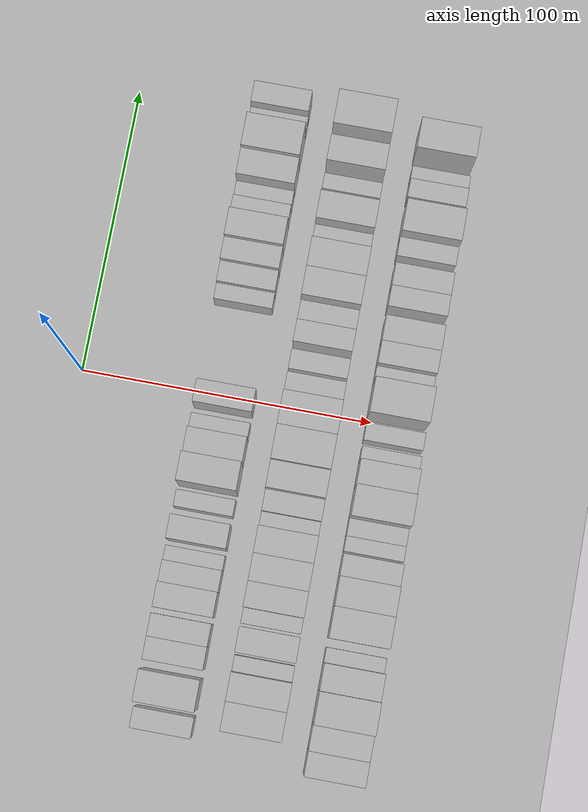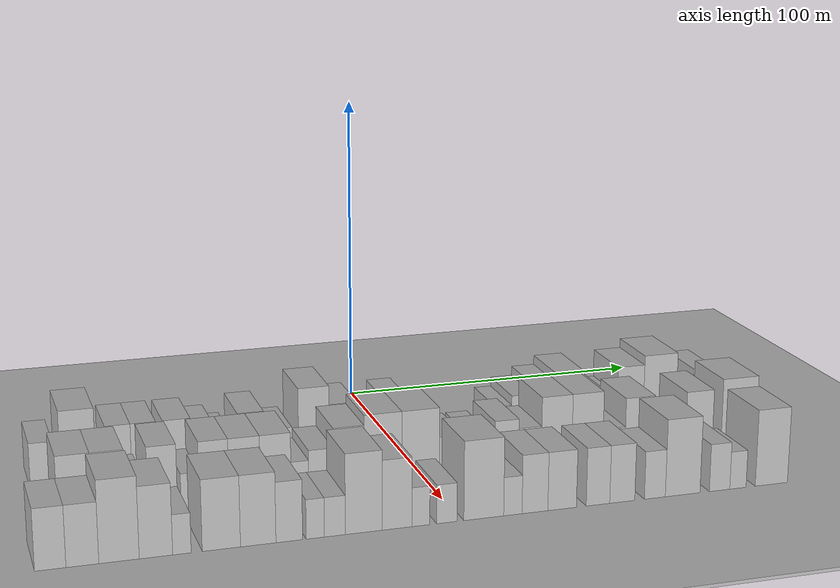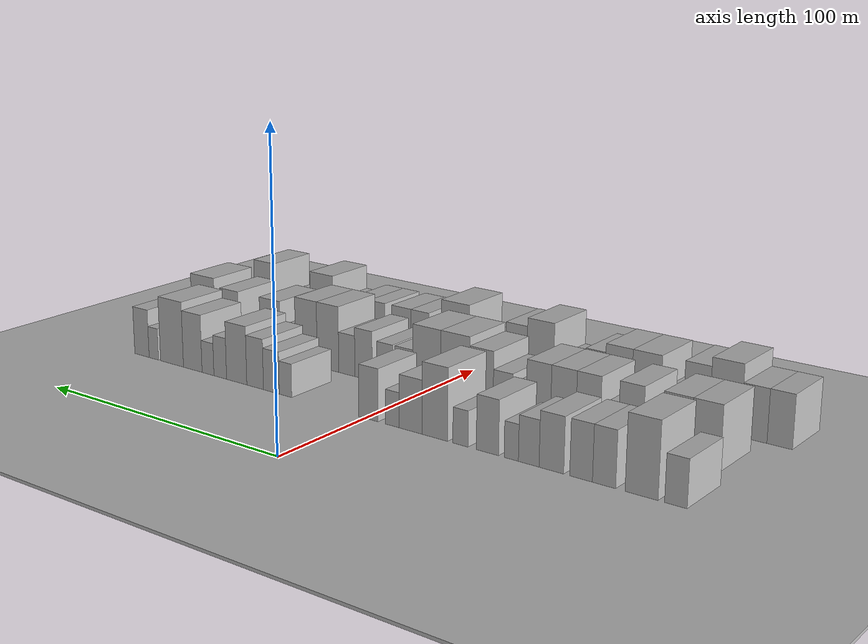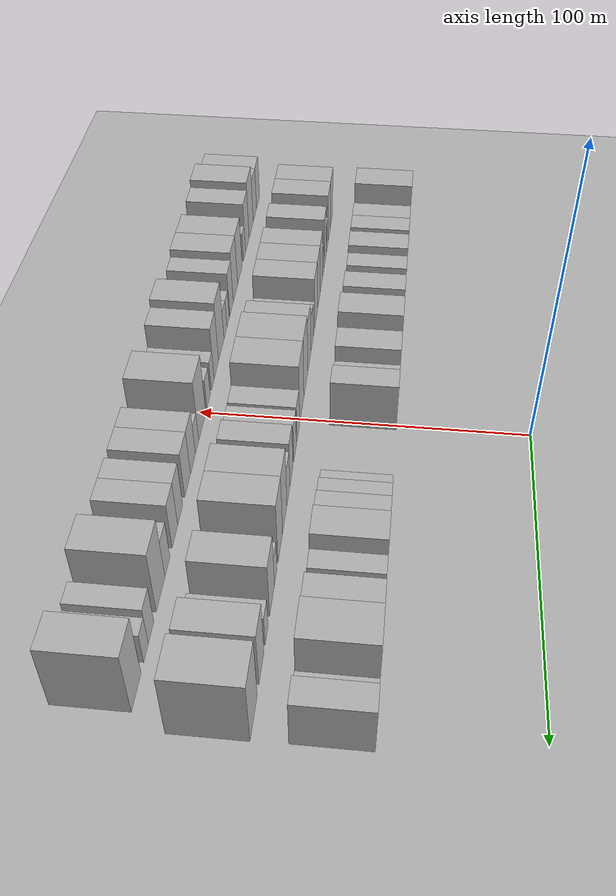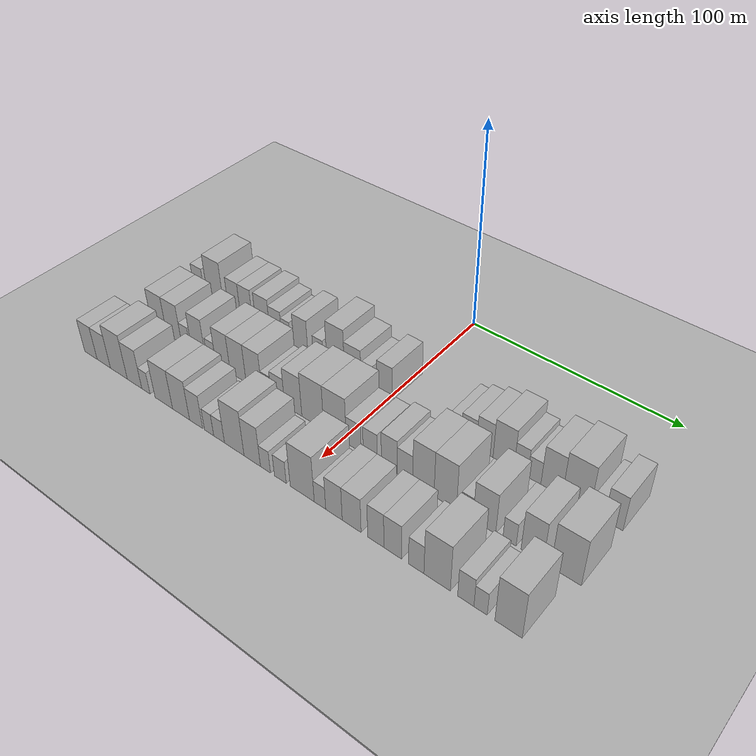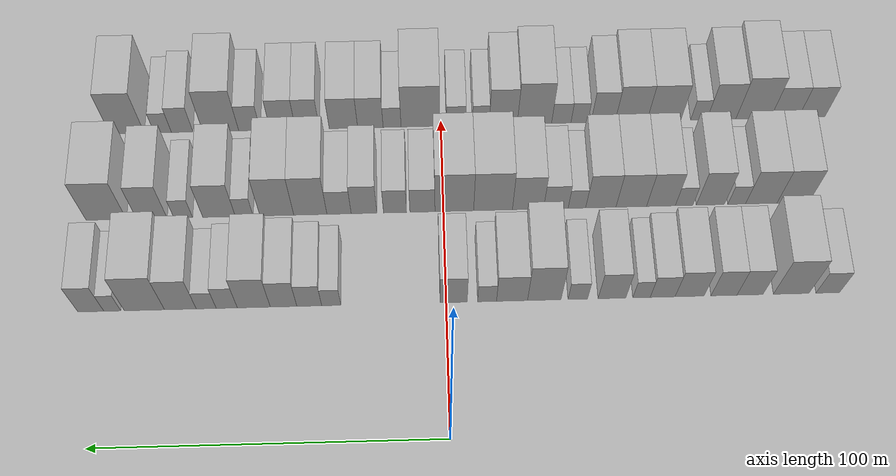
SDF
<sdf version="1.6">
 <world name="default">
  <include><name>ground_plane_1</name><uri>model://HANNAS_ground_plane</uri></include>
  <include>
   <name>ground_plane_2</name>
   <uri>model://HANNAS_ground_plane</uri>
   <pose>100 0 0  0 0 0</pose>
  </include>
  <model name="building_26">
   <static>1</static>
   <pose>50.0000 -109.9660 0 0.000000 0.000000 0.000000</pose>
   <link name="link">
    <pose>0 0 7.50 0 0 0</pose>
    <collision name="collision"><geometry><box><size>20.0000 6.8709 15.0000</size></box></geometry></collision>
    <visual name="visual">
     <cast_shadows>0</cast_shadows>
     <geometry><box><size>20.0000 6.8709 15.0000</size></box></geometry>
     <material>
      <script>
       <uri>model://HANNAS_wall/materials/scripts</uri>
       <uri>model://HANNAS_wall/materials/textures</uri>
       <name>vrc/HANNAS_wall</name>
      </script>
     </material>
    </visual>
   </link>
  </model>
  <model name="building_27">
   <static>1</static>
   <pose>50.0000 -99.3671 0 0.000000 0.000000 0.000000</pose>
   <link name="link">
    <pose>0 0 12.00 0 0 0</pose>
    <collision name="collision"><geometry><box><size>20.0000 10.3270 24.0000</size></box></geometry></collision>
    <visual name="visual">
     <cast_shadows>0</cast_shadows>
     <geometry><box><size>20.0000 10.3270 24.0000</size></box></geometry>
     <material>
      <script>
       <uri>model://HANNAS_wall/materials/scripts</uri>
       <uri>model://HANNAS_wall/materials/textures</uri>
       <name>vrc/HANNAS_wall</name>
      </script>
     </material>
    </visual>
   </link>
  </model>
  <model name="building_28">
   <static>1</static>
   <pose>50.0000 -87.4475 0 0.000000 0.000000 0.000000</pose>
   <link name="link">
    <pose>0 0 9.00 0 0 0</pose>
    <collision name="collision"><geometry><box><size>20.0000 7.5122 18.0000</size></box></geometry></collision>
    <visual name="visual">
     <cast_shadows>0</cast_shadows>
     <geometry><box><size>20.0000 7.5122 18.0000</size></box></geometry>
     <material>
      <script>
       <uri>model://HANNAS_wall/materials/scripts</uri>
       <uri>model://HANNAS_wall/materials/textures</uri>
       <name>vrc/HANNAS_wall</name>
      </script>
     </material>
    </visual>
   </link>
  </model>
  <model name="building_29">
   <static>1</static>
   <pose>50.0000 -79.9290 0 0.000000 0.000000 0.000000</pose>
   <link name="link">
    <pose>0 0 9.00 0 0 0</pose>
    <collision name="collision"><geometry><box><size>20.0000 7.5247 18.0000</size></box></geometry></collision>
    <visual name="visual">
     <cast_shadows>0</cast_shadows>
     <geometry><box><size>20.0000 7.5247 18.0000</size></box></geometry>
     <material>
      <script>
       <uri>model://HANNAS_wall/materials/scripts</uri>
       <uri>model://HANNAS_wall/materials/textures</uri>
       <name>vrc/HANNAS_wall</name>
      </script>
     </material>
    </visual>
   </link>
  </model>
  <model name="building_30">
   <static>1</static>
   <pose>50.0000 -69.9789 0 0.000000 0.000000 0.000000</pose>
   <link name="link">
    <pose>0 0 9.00 0 0 0</pose>
    <collision name="collision"><geometry><box><size>20.0000 8.3756 18.0000</size></box></geometry></collision>
    <visual name="visual">
     <cast_shadows>0</cast_shadows>
     <geometry><box><size>20.0000 8.3756 18.0000</size></box></geometry>
     <material>
      <script>
       <uri>model://HANNAS_wall/materials/scripts</uri>
       <uri>model://HANNAS_wall/materials/textures</uri>
       <name>vrc/HANNAS_wall</name>
      </script>
     </material>
    </visual>
   </link>
  </model>
  <model name="building_31">
   <static>1</static>
   <pose>50.0000 -62.2029 0 0.000000 0.000000 0.000000</pose>
   <link name="link">
    <pose>0 0 7.50 0 0 0</pose>
    <collision name="collision"><geometry><box><size>20.0000 7.1765 15.0000</size></box></geometry></collision>
    <visual name="visual">
     <cast_shadows>0</cast_shadows>
     <geometry><box><size>20.0000 7.1765 15.0000</size></box></geometry>
     <material>
      <script>
       <uri>model://HANNAS_wall/materials/scripts</uri>
       <uri>model://HANNAS_wall/materials/textures</uri>
       <name>vrc/HANNAS_wall</name>
      </script>
     </material>
    </visual>
   </link>
  </model>
  <model name="building_32">
   <static>1</static>
   <pose>50.0000 -56.1010 0 0.000000 0.000000 0.000000</pose>
   <link name="link">
    <pose>0 0 6.00 0 0 0</pose>
    <collision name="collision"><geometry><box><size>20.0000 5.0273 12.0000</size></box></geometry></collision>
    <visual name="visual">
     <cast_shadows>0</cast_shadows>
     <geometry><box><size>20.0000 5.0273 12.0000</size></box></geometry>
     <material>
      <script>
       <uri>model://HANNAS_wall/materials/scripts</uri>
       <uri>model://HANNAS_wall/materials/textures</uri>
       <name>vrc/HANNAS_wall</name>
      </script>
     </material>
    </visual>
   </link>
  </model>
  <model name="building_33">
   <static>1</static>
   <pose>50.0000 -47.5748 0 0.000000 0.000000 0.000000</pose>
   <link name="link">
    <pose>0 0 9.00 0 0 0</pose>
    <collision name="collision"><geometry><box><size>20.0000 8.0251 18.0000</size></box></geometry></collision>
    <visual name="visual">
     <cast_shadows>0</cast_shadows>
     <geometry><box><size>20.0000 8.0251 18.0000</size></box></geometry>
     <material>
      <script>
       <uri>model://HANNAS_wall/materials/scripts</uri>
       <uri>model://HANNAS_wall/materials/textures</uri>
       <name>vrc/HANNAS_wall</name>
      </script>
     </material>
    </visual>
   </link>
  </model>
  <model name="building_34">
   <static>1</static>
   <pose>50.0000 -37.7320 0 0.000000 0.000000 0.000000</pose>
   <link name="link">
    <pose>0 0 6.00 0 0 0</pose>
    <collision name="collision"><geometry><box><size>20.0000 5.6603 12.0000</size></box></geometry></collision>
    <visual name="visual">
     <cast_shadows>0</cast_shadows>
     <geometry><box><size>20.0000 5.6603 12.0000</size></box></geometry>
     <material>
      <script>
       <uri>model://HANNAS_wall/materials/scripts</uri>
       <uri>model://HANNAS_wall/materials/textures</uri>
       <name>vrc/HANNAS_wall</name>
      </script>
     </material>
    </visual>
   </link>
  </model>
  <model name="building_35">
   <static>1</static>
   <pose>50.0000 -28.0791 0 0.000000 0.000000 0.000000</pose>
   <link name="link">
    <pose>0 0 12.00 0 0 0</pose>
    <collision name="collision"><geometry><box><size>20.0000 9.6455 24.0000</size></box></geometry></collision>
    <visual name="visual">
     <cast_shadows>0</cast_shadows>
     <geometry><box><size>20.0000 9.6455 24.0000</size></box></geometry>
     <material>
      <script>
       <uri>model://HANNAS_wall/materials/scripts</uri>
       <uri>model://HANNAS_wall/materials/textures</uri>
       <name>vrc/HANNAS_wall</name>
      </script>
     </material>
    </visual>
   </link>
  </model>
  <model name="building_36">
   <static>1</static>
   <pose>50.0000 -18.7964 0 0.000000 0.000000 0.000000</pose>
   <link name="link">
    <pose>0 0 9.00 0 0 0</pose>
    <collision name="collision"><geometry><box><size>20.0000 8.9199 18.0000</size></box></geometry></collision>
    <visual name="visual">
     <cast_shadows>0</cast_shadows>
     <geometry><box><size>20.0000 8.9199 18.0000</size></box></geometry>
     <material>
      <script>
       <uri>model://HANNAS_wall/materials/scripts</uri>
       <uri>model://HANNAS_wall/materials/textures</uri>
       <name>vrc/HANNAS_wall</name>
      </script>
     </material>
    </visual>
   </link>
  </model>
  <model name="building_37">
   <static>1</static>
   <pose>50.0000 -11.6247 0 0.000000 0.000000 0.000000</pose>
   <link name="link">
    <pose>0 0 6.00 0 0 0</pose>
    <collision name="collision"><geometry><box><size>20.0000 5.4235 12.0000</size></box></geometry></collision>
    <visual name="visual">
     <cast_shadows>0</cast_shadows>
     <geometry><box><size>20.0000 5.4235 12.0000</size></box></geometry>
     <material>
      <script>
       <uri>model://HANNAS_wall/materials/scripts</uri>
       <uri>model://HANNAS_wall/materials/textures</uri>
       <name>vrc/HANNAS_wall</name>
      </script>
     </material>
    </visual>
   </link>
  </model>
  <model name="building_38">
   <static>1</static>
   <pose>50.0000 -2.0124 0 0.000000 0.000000 0.000000</pose>
   <link name="link">
    <pose>0 0 9.00 0 0 0</pose>
    <collision name="collision"><geometry><box><size>20.0000 7.8012 18.0000</size></box></geometry></collision>
    <visual name="visual">
     <cast_shadows>0</cast_shadows>
     <geometry><box><size>20.0000 7.8012 18.0000</size></box></geometry>
     <material>
      <script>
       <uri>model://HANNAS_wall/materials/scripts</uri>
       <uri>model://HANNAS_wall/materials/textures</uri>
       <name>vrc/HANNAS_wall</name>
      </script>
     </material>
    </visual>
   </link>
  </model>
  <model name="building_39">
   <static>1</static>
   <pose>50.0000 33.1125 0 0.000000 0.000000 0.000000</pose>
   <link name="link">
    <pose>0 0 6.00 0 0 0</pose>
    <collision name="collision"><geometry><box><size>20.0000 5.4829 12.0000</size></box></geometry></collision>
    <visual name="visual">
     <cast_shadows>0</cast_shadows>
     <geometry><box><size>20.0000 5.4829 12.0000</size></box></geometry>
     <material>
      <script>
       <uri>model://HANNAS_wall/materials/scripts</uri>
       <uri>model://HANNAS_wall/materials/textures</uri>
       <name>vrc/HANNAS_wall</name>
      </script>
     </material>
    </visual>
   </link>
  </model>
  <model name="building_40">
   <static>1</static>
   <pose>50.0000 39.4169 0 0.000000 0.000000 0.000000</pose>
   <link name="link">
    <pose>0 0 7.50 0 0 0</pose>
    <collision name="collision"><geometry><box><size>20.0000 7.1260 15.0000</size></box></geometry></collision>
    <visual name="visual">
     <cast_shadows>0</cast_shadows>
     <geometry><box><size>20.0000 7.1260 15.0000</size></box></geometry>
     <material>
      <script>
       <uri>model://HANNAS_wall/materials/scripts</uri>
       <uri>model://HANNAS_wall/materials/textures</uri>
       <name>vrc/HANNAS_wall</name>
      </script>
     </material>
    </visual>
   </link>
  </model>
  <model name="building_41">
   <static>1</static>
   <pose>50.0000 46.7882 0 0.000000 0.000000 0.000000</pose>
   <link name="link">
    <pose>0 0 9.00 0 0 0</pose>
    <collision name="collision"><geometry><box><size>20.0000 7.6165 18.0000</size></box></geometry></collision>
    <visual name="visual">
     <cast_shadows>0</cast_shadows>
     <geometry><box><size>20.0000 7.6165 18.0000</size></box></geometry>
     <material>
      <script>
       <uri>model://HANNAS_wall/materials/scripts</uri>
       <uri>model://HANNAS_wall/materials/textures</uri>
       <name>vrc/HANNAS_wall</name>
      </script>
     </material>
    </visual>
   </link>
  </model>
  <model name="building_42">
   <static>1</static>
   <pose>50.0000 55.3181 0 0.000000 0.000000 0.000000</pose>
   <link name="link">
    <pose>0 0 10.50 0 0 0</pose>
    <collision name="collision"><geometry><box><size>20.0000 9.4433 21.0000</size></box></geometry></collision>
    <visual name="visual">
     <cast_shadows>0</cast_shadows>
     <geometry><box><size>20.0000 9.4433 21.0000</size></box></geometry>
     <material>
      <script>
       <uri>model://HANNAS_wall/materials/scripts</uri>
       <uri>model://HANNAS_wall/materials/textures</uri>
       <name>vrc/HANNAS_wall</name>
      </script>
     </material>
    </visual>
   </link>
  </model>
  <model name="building_43">
   <static>1</static>
   <pose>50.0000 63.0514 0 0.000000 0.000000 0.000000</pose>
   <link name="link">
    <pose>0 0 7.50 0 0 0</pose>
    <collision name="collision"><geometry><box><size>20.0000 6.0235 15.0000</size></box></geometry></collision>
    <visual name="visual">
     <cast_shadows>0</cast_shadows>
     <geometry><box><size>20.0000 6.0235 15.0000</size></box></geometry>
     <material>
      <script>
       <uri>model://HANNAS_wall/materials/scripts</uri>
       <uri>model://HANNAS_wall/materials/textures</uri>
       <name>vrc/HANNAS_wall</name>
      </script>
     </material>
    </visual>
   </link>
  </model>
  <model name="building_44">
   <static>1</static>
   <pose>50.0000 68.9114 0 0.000000 0.000000 0.000000</pose>
   <link name="link">
    <pose>0 0 6.00 0 0 0</pose>
    <collision name="collision"><geometry><box><size>20.0000 5.6965 12.0000</size></box></geometry></collision>
    <visual name="visual">
     <cast_shadows>0</cast_shadows>
     <geometry><box><size>20.0000 5.6965 12.0000</size></box></geometry>
     <material>
      <script>
       <uri>model://HANNAS_wall/materials/scripts</uri>
       <uri>model://HANNAS_wall/materials/textures</uri>
       <name>vrc/HANNAS_wall</name>
      </script>
     </material>
    </visual>
   </link>
  </model>
  <model name="building_45">
   <static>1</static>
   <pose>50.0000 76.3164 0 0.000000 0.000000 0.000000</pose>
   <link name="link">
    <pose>0 0 10.50 0 0 0</pose>
    <collision name="collision"><geometry><box><size>20.0000 9.1134 21.0000</size></box></geometry></collision>
    <visual name="visual">
     <cast_shadows>0</cast_shadows>
     <geometry><box><size>20.0000 9.1134 21.0000</size></box></geometry>
     <material>
      <script>
       <uri>model://HANNAS_wall/materials/scripts</uri>
       <uri>model://HANNAS_wall/materials/textures</uri>
       <name>vrc/HANNAS_wall</name>
      </script>
     </material>
    </visual>
   </link>
  </model>
  <model name="building_46">
   <static>1</static>
   <pose>50.0000 86.6233 0 0.000000 0.000000 0.000000</pose>
   <link name="link">
    <pose>0 0 12.00 0 0 0</pose>
    <collision name="collision"><geometry><box><size>20.0000 11.5006 24.0000</size></box></geometry></collision>
    <visual name="visual">
     <cast_shadows>0</cast_shadows>
     <geometry><box><size>20.0000 11.5006 24.0000</size></box></geometry>
     <material>
      <script>
       <uri>model://HANNAS_wall/materials/scripts</uri>
       <uri>model://HANNAS_wall/materials/textures</uri>
       <name>vrc/HANNAS_wall</name>
      </script>
     </material>
    </visual>
   </link>
  </model>
  <model name="building_47">
   <static>1</static>
   <pose>50.0000 95.7858 0 0.000000 0.000000 0.000000</pose>
   <link name="link">
    <pose>0 0 6.00 0 0 0</pose>
    <collision name="collision"><geometry><box><size>20.0000 4.8242 12.0000</size></box></geometry></collision>
    <visual name="visual">
     <cast_shadows>0</cast_shadows>
     <geometry><box><size>20.0000 4.8242 12.0000</size></box></geometry>
     <material>
      <script>
       <uri>model://HANNAS_wall/materials/scripts</uri>
       <uri>model://HANNAS_wall/materials/textures</uri>
       <name>vrc/HANNAS_wall</name>
      </script>
     </material>
    </visual>
   </link>
  </model>
  <model name="building_48">
   <static>1</static>
   <pose>50.0000 101.9094 0 0.000000 0.000000 0.000000</pose>
   <link name="link">
    <pose>0 0 9.00 0 0 0</pose>
    <collision name="collision"><geometry><box><size>20.0000 7.4231 18.0000</size></box></geometry></collision>
    <visual name="visual">
     <cast_shadows>0</cast_shadows>
     <geometry><box><size>20.0000 7.4231 18.0000</size></box></geometry>
     <material>
      <script>
       <uri>model://HANNAS_wall/materials/scripts</uri>
       <uri>model://HANNAS_wall/materials/textures</uri>
       <name>vrc/HANNAS_wall</name>
      </script>
     </material>
    </visual>
   </link>
  </model>
  <model name="building_103">
   <static>1</static>
   <pose>79.0000 -104.0372 0 0.000000 0.000000 0.000000</pose>
   <link name="link">
    <pose>0 0 10.50 0 0 0</pose>
    <collision name="collision"><geometry><box><size>20.0000 9.5311 21.0000</size></box></geometry></collision>
    <visual name="visual">
     <cast_shadows>0</cast_shadows>
     <geometry><box><size>20.0000 9.5311 21.0000</size></box></geometry>
     <material>
      <script>
       <uri>model://HANNAS_wall/materials/scripts</uri>
       <uri>model://HANNAS_wall/materials/textures</uri>
       <name>vrc/HANNAS_wall</name>
      </script>
     </material>
    </visual>
   </link>
  </model>
  <model name="building_104">
   <static>1</static>
   <pose>79.0000 -94.5665 0 0.000000 0.000000 0.000000</pose>
   <link name="link">
    <pose>0 0 10.50 0 0 0</pose>
    <collision name="collision"><geometry><box><size>20.0000 9.4101 21.0000</size></box></geometry></collision>
    <visual name="visual">
     <cast_shadows>0</cast_shadows>
     <geometry><box><size>20.0000 9.4101 21.0000</size></box></geometry>
     <material>
      <script>
       <uri>model://HANNAS_wall/materials/scripts</uri>
       <uri>model://HANNAS_wall/materials/textures</uri>
       <name>vrc/HANNAS_wall</name>
      </script>
     </material>
    </visual>
   </link>
  </model>
  <model name="building_105">
   <static>1</static>
   <pose>79.0000 -87.2103 0 0.000000 0.000000 0.000000</pose>
   <link name="link">
    <pose>0 0 6.00 0 0 0</pose>
    <collision name="collision"><geometry><box><size>20.0000 5.3024 12.0000</size></box></geometry></collision>
    <visual name="visual">
     <cast_shadows>0</cast_shadows>
     <geometry><box><size>20.0000 5.3024 12.0000</size></box></geometry>
     <material>
      <script>
       <uri>model://HANNAS_wall/materials/scripts</uri>
       <uri>model://HANNAS_wall/materials/textures</uri>
       <name>vrc/HANNAS_wall</name>
      </script>
     </material>
    </visual>
   </link>
  </model>
  <model name="building_106">
   <static>1</static>
   <pose>79.0000 -79.3529 0 0.000000 0.000000 0.000000</pose>
   <link name="link">
    <pose>0 0 10.50 0 0 0</pose>
    <collision name="collision"><geometry><box><size>20.0000 8.4125 21.0000</size></box></geometry></collision>
    <visual name="visual">
     <cast_shadows>0</cast_shadows>
     <geometry><box><size>20.0000 8.4125 21.0000</size></box></geometry>
     <material>
      <script>
       <uri>model://HANNAS_wall/materials/scripts</uri>
       <uri>model://HANNAS_wall/materials/textures</uri>
       <name>vrc/HANNAS_wall</name>
      </script>
     </material>
    </visual>
   </link>
  </model>
  <model name="building_107">
   <static>1</static>
   <pose>79.0000 -71.5324 0 0.000000 0.000000 0.000000</pose>
   <link name="link">
    <pose>0 0 6.00 0 0 0</pose>
    <collision name="collision"><geometry><box><size>20.0000 5.2285 12.0000</size></box></geometry></collision>
    <visual name="visual">
     <cast_shadows>0</cast_shadows>
     <geometry><box><size>20.0000 5.2285 12.0000</size></box></geometry>
     <material>
      <script>
       <uri>model://HANNAS_wall/materials/scripts</uri>
       <uri>model://HANNAS_wall/materials/textures</uri>
       <name>vrc/HANNAS_wall</name>
      </script>
     </material>
    </visual>
   </link>
  </model>
  <model name="building_108">
   <static>1</static>
   <pose>79.0000 -64.6265 0 0.000000 0.000000 0.000000</pose>
   <link name="link">
    <pose>0 0 10.50 0 0 0</pose>
    <collision name="collision"><geometry><box><size>20.0000 8.5834 21.0000</size></box></geometry></collision>
    <visual name="visual">
     <cast_shadows>0</cast_shadows>
     <geometry><box><size>20.0000 8.5834 21.0000</size></box></geometry>
     <material>
      <script>
       <uri>model://HANNAS_wall/materials/scripts</uri>
       <uri>model://HANNAS_wall/materials/textures</uri>
       <name>vrc/HANNAS_wall</name>
      </script>
     </material>
    </visual>
   </link>
  </model>
  <model name="building_109">
   <static>1</static>
   <pose>79.0000 -55.7679 0 0.000000 0.000000 0.000000</pose>
   <link name="link">
    <pose>0 0 10.50 0 0 0</pose>
    <collision name="collision"><geometry><box><size>20.0000 9.1338 21.0000</size></box></geometry></collision>
    <visual name="visual">
     <cast_shadows>0</cast_shadows>
     <geometry><box><size>20.0000 9.1338 21.0000</size></box></geometry>
     <material>
      <script>
       <uri>model://HANNAS_wall/materials/scripts</uri>
       <uri>model://HANNAS_wall/materials/textures</uri>
       <name>vrc/HANNAS_wall</name>
      </script>
     </material>
    </visual>
   </link>
  </model>
  <model name="building_110">
   <static>1</static>
   <pose>79.0000 -46.6838 0 0.000000 0.000000 0.000000</pose>
   <link name="link">
    <pose>0 0 10.50 0 0 0</pose>
    <collision name="collision"><geometry><box><size>20.0000 9.0343 21.0000</size></box></geometry></collision>
    <visual name="visual">
     <cast_shadows>0</cast_shadows>
     <geometry><box><size>20.0000 9.0343 21.0000</size></box></geometry>
     <material>
      <script>
       <uri>model://HANNAS_wall/materials/scripts</uri>
       <uri>model://HANNAS_wall/materials/textures</uri>
       <name>vrc/HANNAS_wall</name>
      </script>
     </material>
    </visual>
   </link>
  </model>
  <model name="building_111">
   <static>1</static>
   <pose>79.0000 -39.5635 0 0.000000 0.000000 0.000000</pose>
   <link name="link">
    <pose>0 0 6.00 0 0 0</pose>
    <collision name="collision"><geometry><box><size>20.0000 5.2063 12.0000</size></box></geometry></collision>
    <visual name="visual">
     <cast_shadows>0</cast_shadows>
     <geometry><box><size>20.0000 5.2063 12.0000</size></box></geometry>
     <material>
      <script>
       <uri>model://HANNAS_wall/materials/scripts</uri>
       <uri>model://HANNAS_wall/materials/textures</uri>
       <name>vrc/HANNAS_wall</name>
      </script>
     </material>
    </visual>
   </link>
  </model>
  <model name="building_112">
   <static>1</static>
   <pose>79.0000 -33.2986 0 0.000000 0.000000 0.000000</pose>
   <link name="link">
    <pose>0 0 7.50 0 0 0</pose>
    <collision name="collision"><geometry><box><size>20.0000 7.3235 15.0000</size></box></geometry></collision>
    <visual name="visual">
     <cast_shadows>0</cast_shadows>
     <geometry><box><size>20.0000 7.3235 15.0000</size></box></geometry>
     <material>
      <script>
       <uri>model://HANNAS_wall/materials/scripts</uri>
       <uri>model://HANNAS_wall/materials/textures</uri>
       <name>vrc/HANNAS_wall</name>
      </script>
     </material>
    </visual>
   </link>
  </model>
  <model name="building_113">
   <static>1</static>
   <pose>79.0000 -25.0098 0 0.000000 0.000000 0.000000</pose>
   <link name="link">
    <pose>0 0 10.50 0 0 0</pose>
    <collision name="collision"><geometry><box><size>20.0000 9.2541 21.0000</size></box></geometry></collision>
    <visual name="visual">
     <cast_shadows>0</cast_shadows>
     <geometry><box><size>20.0000 9.2541 21.0000</size></box></geometry>
     <material>
      <script>
       <uri>model://HANNAS_wall/materials/scripts</uri>
       <uri>model://HANNAS_wall/materials/textures</uri>
       <name>vrc/HANNAS_wall</name>
      </script>
     </material>
    </visual>
   </link>
  </model>
  <model name="building_114">
   <static>1</static>
   <pose>79.0000 -14.6184 0 0.000000 0.000000 0.000000</pose>
   <link name="link">
    <pose>0 0 12.00 0 0 0</pose>
    <collision name="collision"><geometry><box><size>20.0000 11.5288 24.0000</size></box></geometry></collision>
    <visual name="visual">
     <cast_shadows>0</cast_shadows>
     <geometry><box><size>20.0000 11.5288 24.0000</size></box></geometry>
     <material>
      <script>
       <uri>model://HANNAS_wall/materials/scripts</uri>
       <uri>model://HANNAS_wall/materials/textures</uri>
       <name>vrc/HANNAS_wall</name>
      </script>
     </material>
    </visual>
   </link>
  </model>
  <model name="building_115">
   <static>1</static>
   <pose>79.0000 -3.1090 0 0.000000 0.000000 0.000000</pose>
   <link name="link">
    <pose>0 0 12.00 0 0 0</pose>
    <collision name="collision"><geometry><box><size>20.0000 11.4900 24.0000</size></box></geometry></collision>
    <visual name="visual">
     <cast_shadows>0</cast_shadows>
     <geometry><box><size>20.0000 11.4900 24.0000</size></box></geometry>
     <material>
      <script>
       <uri>model://HANNAS_wall/materials/scripts</uri>
       <uri>model://HANNAS_wall/materials/textures</uri>
       <name>vrc/HANNAS_wall</name>
      </script>
     </material>
    </visual>
   </link>
  </model>
  <model name="building_116">
   <static>1</static>
   <pose>79.0000 6.3498 0 0.000000 0.000000 0.000000</pose>
   <link name="link">
    <pose>0 0 7.50 0 0 0</pose>
    <collision name="collision"><geometry><box><size>20.0000 7.4276 15.0000</size></box></geometry></collision>
    <visual name="visual">
     <cast_shadows>0</cast_shadows>
     <geometry><box><size>20.0000 7.4276 15.0000</size></box></geometry>
     <material>
      <script>
       <uri>model://HANNAS_wall/materials/scripts</uri>
       <uri>model://HANNAS_wall/materials/textures</uri>
       <name>vrc/HANNAS_wall</name>
      </script>
     </material>
    </visual>
   </link>
  </model>
  <model name="building_117">
   <static>1</static>
   <pose>79.0000 14.4755 0 0.000000 0.000000 0.000000</pose>
   <link name="link">
    <pose>0 0 7.50 0 0 0</pose>
    <collision name="collision"><geometry><box><size>20.0000 6.8240 15.0000</size></box></geometry></collision>
    <visual name="visual">
     <cast_shadows>0</cast_shadows>
     <geometry><box><size>20.0000 6.8240 15.0000</size></box></geometry>
     <material>
      <script>
       <uri>model://HANNAS_wall/materials/scripts</uri>
       <uri>model://HANNAS_wall/materials/textures</uri>
       <name>vrc/HANNAS_wall</name>
      </script>
     </material>
    </visual>
   </link>
  </model>
  <model name="building_118">
   <static>1</static>
   <pose>79.0000 23.6898 0 0.000000 0.000000 0.000000</pose>
   <link name="link">
    <pose>0 0 9.00 0 0 0</pose>
    <collision name="collision"><geometry><box><size>20.0000 7.6046 18.0000</size></box></geometry></collision>
    <visual name="visual">
     <cast_shadows>0</cast_shadows>
     <geometry><box><size>20.0000 7.6046 18.0000</size></box></geometry>
     <material>
      <script>
       <uri>model://HANNAS_wall/materials/scripts</uri>
       <uri>model://HANNAS_wall/materials/textures</uri>
       <name>vrc/HANNAS_wall</name>
      </script>
     </material>
    </visual>
   </link>
  </model>
  <model name="building_119">
   <static>1</static>
   <pose>79.0000 31.0871 0 0.000000 0.000000 0.000000</pose>
   <link name="link">
    <pose>0 0 7.50 0 0 0</pose>
    <collision name="collision"><geometry><box><size>20.0000 7.1898 15.0000</size></box></geometry></collision>
    <visual name="visual">
     <cast_shadows>0</cast_shadows>
     <geometry><box><size>20.0000 7.1898 15.0000</size></box></geometry>
     <material>
      <script>
       <uri>model://HANNAS_wall/materials/scripts</uri>
       <uri>model://HANNAS_wall/materials/textures</uri>
       <name>vrc/HANNAS_wall</name>
      </script>
     </material>
    </visual>
   </link>
  </model>
  <model name="building_120">
   <static>1</static>
   <pose>79.0000 39.5915 0 0.000000 0.000000 0.000000</pose>
   <link name="link">
    <pose>0 0 12.00 0 0 0</pose>
    <collision name="collision"><geometry><box><size>20.0000 9.8191 24.0000</size></box></geometry></collision>
    <visual name="visual">
     <cast_shadows>0</cast_shadows>
     <geometry><box><size>20.0000 9.8191 24.0000</size></box></geometry>
     <material>
      <script>
       <uri>model://HANNAS_wall/materials/scripts</uri>
       <uri>model://HANNAS_wall/materials/textures</uri>
       <name>vrc/HANNAS_wall</name>
      </script>
     </material>
    </visual>
   </link>
  </model>
  <model name="building_121">
   <static>1</static>
   <pose>79.0000 49.5161 0 0.000000 0.000000 0.000000</pose>
   <link name="link">
    <pose>0 0 12.00 0 0 0</pose>
    <collision name="collision"><geometry><box><size>20.0000 10.0301 24.0000</size></box></geometry></collision>
    <visual name="visual">
     <cast_shadows>0</cast_shadows>
     <geometry><box><size>20.0000 10.0301 24.0000</size></box></geometry>
     <material>
      <script>
       <uri>model://HANNAS_wall/materials/scripts</uri>
       <uri>model://HANNAS_wall/materials/textures</uri>
       <name>vrc/HANNAS_wall</name>
      </script>
     </material>
    </visual>
   </link>
  </model>
  <model name="building_122">
   <static>1</static>
   <pose>79.0000 59.1635 0 0.000000 0.000000 0.000000</pose>
   <link name="link">
    <pose>0 0 6.00 0 0 0</pose>
    <collision name="collision"><geometry><box><size>20.0000 5.2646 12.0000</size></box></geometry></collision>
    <visual name="visual">
     <cast_shadows>0</cast_shadows>
     <geometry><box><size>20.0000 5.2646 12.0000</size></box></geometry>
     <material>
      <script>
       <uri>model://HANNAS_wall/materials/scripts</uri>
       <uri>model://HANNAS_wall/materials/textures</uri>
       <name>vrc/HANNAS_wall</name>
      </script>
     </material>
    </visual>
   </link>
  </model>
  <model name="building_123">
   <static>1</static>
   <pose>79.0000 66.6234 0 0.000000 0.000000 0.000000</pose>
   <link name="link">
    <pose>0 0 10.50 0 0 0</pose>
    <collision name="collision"><geometry><box><size>20.0000 9.6552 21.0000</size></box></geometry></collision>
    <visual name="visual">
     <cast_shadows>0</cast_shadows>
     <geometry><box><size>20.0000 9.6552 21.0000</size></box></geometry>
     <material>
      <script>
       <uri>model://HANNAS_wall/materials/scripts</uri>
       <uri>model://HANNAS_wall/materials/textures</uri>
       <name>vrc/HANNAS_wall</name>
      </script>
     </material>
    </visual>
   </link>
  </model>
  <model name="building_124">
   <static>1</static>
   <pose>79.0000 77.2126 0 0.000000 0.000000 0.000000</pose>
   <link name="link">
    <pose>0 0 6.00 0 0 0</pose>
    <collision name="collision"><geometry><box><size>20.0000 5.5230 12.0000</size></box></geometry></collision>
    <visual name="visual">
     <cast_shadows>0</cast_shadows>
     <geometry><box><size>20.0000 5.5230 12.0000</size></box></geometry>
     <material>
      <script>
       <uri>model://HANNAS_wall/materials/scripts</uri>
       <uri>model://HANNAS_wall/materials/textures</uri>
       <name>vrc/HANNAS_wall</name>
      </script>
     </material>
    </visual>
   </link>
  </model>
  <model name="building_125">
   <static>1</static>
   <pose>79.0000 86.4869 0 0.000000 0.000000 0.000000</pose>
   <link name="link">
    <pose>0 0 10.50 0 0 0</pose>
    <collision name="collision"><geometry><box><size>20.0000 9.0257 21.0000</size></box></geometry></collision>
    <visual name="visual">
     <cast_shadows>0</cast_shadows>
     <geometry><box><size>20.0000 9.0257 21.0000</size></box></geometry>
     <material>
      <script>
       <uri>model://HANNAS_wall/materials/scripts</uri>
       <uri>model://HANNAS_wall/materials/textures</uri>
       <name>vrc/HANNAS_wall</name>
      </script>
     </material>
    </visual>
   </link>
  </model>
  <model name="building_126">
   <static>1</static>
   <pose>79.0000 99.9576 0 0.000000 0.000000 0.000000</pose>
   <link name="link">
    <pose>0 0 12.00 0 0 0</pose>
    <collision name="collision"><geometry><box><size>20.0000 11.9156 24.0000</size></box></geometry></collision>
    <visual name="visual">
     <cast_shadows>0</cast_shadows>
     <geometry><box><size>20.0000 11.9156 24.0000</size></box></geometry>
     <material>
      <script>
       <uri>model://HANNAS_wall/materials/scripts</uri>
       <uri>model://HANNAS_wall/materials/textures</uri>
       <name>vrc/HANNAS_wall</name>
      </script>
     </material>
    </visual>
   </link>
  </model>
  <model name="building_173">
   <static>1</static>
   <pose>108.0000 -114.0079 0 0.000000 0.000000 0.000000</pose>
   <link name="link">
    <pose>0 0 9.00 0 0 0</pose>
    <collision name="collision"><geometry><box><size>20.0000 8.1703 18.0000</size></box></geometry></collision>
    <visual name="visual">
     <cast_shadows>0</cast_shadows>
     <geometry><box><size>20.0000 8.1703 18.0000</size></box></geometry>
     <material>
      <script>
       <uri>model://HANNAS_wall/materials/scripts</uri>
       <uri>model://HANNAS_wall/materials/textures</uri>
       <name>vrc/HANNAS_wall</name>
      </script>
     </material>
    </visual>
   </link>
  </model>
  <model name="building_174">
   <static>1</static>
   <pose>108.0000 -105.6132 0 0.000000 0.000000 0.000000</pose>
   <link name="link">
    <pose>0 0 9.00 0 0 0</pose>
    <collision name="collision"><geometry><box><size>20.0000 8.6191 18.0000</size></box></geometry></collision>
    <visual name="visual">
     <cast_shadows>0</cast_shadows>
     <geometry><box><size>20.0000 8.6191 18.0000</size></box></geometry>
     <material>
      <script>
       <uri>model://HANNAS_wall/materials/scripts</uri>
       <uri>model://HANNAS_wall/materials/textures</uri>
       <name>vrc/HANNAS_wall</name>
      </script>
     </material>
    </visual>
   </link>
  </model>
  <model name="building_175">
   <static>1</static>
   <pose>108.0000 -95.9582 0 0.000000 0.000000 0.000000</pose>
   <link name="link">
    <pose>0 0 12.00 0 0 0</pose>
    <collision name="collision"><geometry><box><size>20.0000 10.6909 24.0000</size></box></geometry></collision>
    <visual name="visual">
     <cast_shadows>0</cast_shadows>
     <geometry><box><size>20.0000 10.6909 24.0000</size></box></geometry>
     <material>
      <script>
       <uri>model://HANNAS_wall/materials/scripts</uri>
       <uri>model://HANNAS_wall/materials/textures</uri>
       <name>vrc/HANNAS_wall</name>
      </script>
     </material>
    </visual>
   </link>
  </model>
  <model name="building_176">
   <static>1</static>
   <pose>108.0000 -86.1300 0 0.000000 0.000000 0.000000</pose>
   <link name="link">
    <pose>0 0 10.50 0 0 0</pose>
    <collision name="collision"><geometry><box><size>20.0000 8.9656 21.0000</size></box></geometry></collision>
    <visual name="visual">
     <cast_shadows>0</cast_shadows>
     <geometry><box><size>20.0000 8.9656 21.0000</size></box></geometry>
     <material>
      <script>
       <uri>model://HANNAS_wall/materials/scripts</uri>
       <uri>model://HANNAS_wall/materials/textures</uri>
       <name>vrc/HANNAS_wall</name>
      </script>
     </material>
    </visual>
   </link>
  </model>
  <model name="building_177">
   <static>1</static>
   <pose>108.0000 -79.1521 0 0.000000 0.000000 0.000000</pose>
   <link name="link">
    <pose>0 0 6.00 0 0 0</pose>
    <collision name="collision"><geometry><box><size>20.0000 4.9901 12.0000</size></box></geometry></collision>
    <visual name="visual">
     <cast_shadows>0</cast_shadows>
     <geometry><box><size>20.0000 4.9901 12.0000</size></box></geometry>
     <material>
      <script>
       <uri>model://HANNAS_wall/materials/scripts</uri>
       <uri>model://HANNAS_wall/materials/textures</uri>
       <name>vrc/HANNAS_wall</name>
      </script>
     </material>
    </visual>
   </link>
  </model>
  <model name="building_178">
   <static>1</static>
   <pose>108.0000 -68.4357 0 0.000000 0.000000 0.000000</pose>
   <link name="link">
    <pose>0 0 10.50 0 0 0</pose>
    <collision name="collision"><geometry><box><size>20.0000 10.4426 21.0000</size></box></geometry></collision>
    <visual name="visual">
     <cast_shadows>0</cast_shadows>
     <geometry><box><size>20.0000 10.4426 21.0000</size></box></geometry>
     <material>
      <script>
       <uri>model://HANNAS_wall/materials/scripts</uri>
       <uri>model://HANNAS_wall/materials/textures</uri>
       <name>vrc/HANNAS_wall</name>
      </script>
     </material>
    </visual>
   </link>
  </model>
  <model name="building_179">
   <static>1</static>
   <pose>108.0000 -58.2988 0 0.000000 0.000000 0.000000</pose>
   <link name="link">
    <pose>0 0 10.50 0 0 0</pose>
    <collision name="collision"><geometry><box><size>20.0000 9.8314 21.0000</size></box></geometry></collision>
    <visual name="visual">
     <cast_shadows>0</cast_shadows>
     <geometry><box><size>20.0000 9.8314 21.0000</size></box></geometry>
     <material>
      <script>
       <uri>model://HANNAS_wall/materials/scripts</uri>
       <uri>model://HANNAS_wall/materials/textures</uri>
       <name>vrc/HANNAS_wall</name>
      </script>
     </material>
    </visual>
   </link>
  </model>
  <model name="building_180">
   <static>1</static>
   <pose>108.0000 -49.6683 0 0.000000 0.000000 0.000000</pose>
   <link name="link">
    <pose>0 0 9.00 0 0 0</pose>
    <collision name="collision"><geometry><box><size>20.0000 7.4295 18.0000</size></box></geometry></collision>
    <visual name="visual">
     <cast_shadows>0</cast_shadows>
     <geometry><box><size>20.0000 7.4295 18.0000</size></box></geometry>
     <material>
      <script>
       <uri>model://HANNAS_wall/materials/scripts</uri>
       <uri>model://HANNAS_wall/materials/textures</uri>
       <name>vrc/HANNAS_wall</name>
      </script>
     </material>
    </visual>
   </link>
  </model>
  <model name="building_181">
   <static>1</static>
   <pose>108.0000 -42.3863 0 0.000000 0.000000 0.000000</pose>
   <link name="link">
    <pose>0 0 6.00 0 0 0</pose>
    <collision name="collision"><geometry><box><size>20.0000 5.1345 12.0000</size></box></geometry></collision>
    <visual name="visual">
     <cast_shadows>0</cast_shadows>
     <geometry><box><size>20.0000 5.1345 12.0000</size></box></geometry>
     <material>
      <script>
       <uri>model://HANNAS_wall/materials/scripts</uri>
       <uri>model://HANNAS_wall/materials/textures</uri>
       <name>vrc/HANNAS_wall</name>
      </script>
     </material>
    </visual>
   </link>
  </model>
  <model name="building_182">
   <static>1</static>
   <pose>108.0000 -36.8441 0 0.000000 0.000000 0.000000</pose>
   <link name="link">
    <pose>0 0 6.00 0 0 0</pose>
    <collision name="collision"><geometry><box><size>20.0000 5.9498 12.0000</size></box></geometry></collision>
    <visual name="visual">
     <cast_shadows>0</cast_shadows>
     <geometry><box><size>20.0000 5.9498 12.0000</size></box></geometry>
     <material>
      <script>
       <uri>model://HANNAS_wall/materials/scripts</uri>
       <uri>model://HANNAS_wall/materials/textures</uri>
       <name>vrc/HANNAS_wall</name>
      </script>
     </material>
    </visual>
   </link>
  </model>
  <model name="building_183">
   <static>1</static>
   <pose>108.0000 -28.5999 0 0.000000 0.000000 0.000000</pose>
   <link name="link">
    <pose>0 0 12.00 0 0 0</pose>
    <collision name="collision"><geometry><box><size>20.0000 10.5388 24.0000</size></box></geometry></collision>
    <visual name="visual">
     <cast_shadows>0</cast_shadows>
     <geometry><box><size>20.0000 10.5388 24.0000</size></box></geometry>
     <material>
      <script>
       <uri>model://HANNAS_wall/materials/scripts</uri>
       <uri>model://HANNAS_wall/materials/textures</uri>
       <name>vrc/HANNAS_wall</name>
      </script>
     </material>
    </visual>
   </link>
  </model>
  <model name="building_184">
   <static>1</static>
   <pose>108.0000 -19.0278 0 0.000000 0.000000 0.000000</pose>
   <link name="link">
    <pose>0 0 10.50 0 0 0</pose>
    <collision name="collision"><geometry><box><size>20.0000 8.6053 21.0000</size></box></geometry></collision>
    <visual name="visual">
     <cast_shadows>0</cast_shadows>
     <geometry><box><size>20.0000 8.6053 21.0000</size></box></geometry>
     <material>
      <script>
       <uri>model://HANNAS_wall/materials/scripts</uri>
       <uri>model://HANNAS_wall/materials/textures</uri>
       <name>vrc/HANNAS_wall</name>
      </script>
     </material>
    </visual>
   </link>
  </model>
  <model name="building_185">
   <static>1</static>
   <pose>108.0000 -12.1364 0 0.000000 0.000000 0.000000</pose>
   <link name="link">
    <pose>0 0 6.00 0 0 0</pose>
    <collision name="collision"><geometry><box><size>20.0000 5.1776 12.0000</size></box></geometry></collision>
    <visual name="visual">
     <cast_shadows>0</cast_shadows>
     <geometry><box><size>20.0000 5.1776 12.0000</size></box></geometry>
     <material>
      <script>
       <uri>model://HANNAS_wall/materials/scripts</uri>
       <uri>model://HANNAS_wall/materials/textures</uri>
       <name>vrc/HANNAS_wall</name>
      </script>
     </material>
    </visual>
   </link>
  </model>
  <model name="building_186">
   <static>1</static>
   <pose>108.0000 -4.5537 0 0.000000 0.000000 0.000000</pose>
   <link name="link">
    <pose>0 0 6.00 0 0 0</pose>
    <collision name="collision"><geometry><box><size>20.0000 5.9877 12.0000</size></box></geometry></collision>
    <visual name="visual">
     <cast_shadows>0</cast_shadows>
     <geometry><box><size>20.0000 5.9877 12.0000</size></box></geometry>
     <material>
      <script>
       <uri>model://HANNAS_wall/materials/scripts</uri>
       <uri>model://HANNAS_wall/materials/textures</uri>
       <name>vrc/HANNAS_wall</name>
      </script>
     </material>
    </visual>
   </link>
  </model>
  <model name="building_187">
   <static>1</static>
   <pose>108.0000 6.3653 0 0.000000 0.000000 0.000000</pose>
   <link name="link">
    <pose>0 0 12.00 0 0 0</pose>
    <collision name="collision"><geometry><box><size>20.0000 11.8505 24.0000</size></box></geometry></collision>
    <visual name="visual">
     <cast_shadows>0</cast_shadows>
     <geometry><box><size>20.0000 11.8505 24.0000</size></box></geometry>
     <material>
      <script>
       <uri>model://HANNAS_wall/materials/scripts</uri>
       <uri>model://HANNAS_wall/materials/textures</uri>
       <name>vrc/HANNAS_wall</name>
      </script>
     </material>
    </visual>
   </link>
  </model>
  <model name="building_188">
   <static>1</static>
   <pose>108.0000 15.0396 0 0.000000 0.000000 0.000000</pose>
   <link name="link">
    <pose>0 0 6.00 0 0 0</pose>
    <collision name="collision"><geometry><box><size>20.0000 5.4981 12.0000</size></box></geometry></collision>
    <visual name="visual">
     <cast_shadows>0</cast_shadows>
     <geometry><box><size>20.0000 5.4981 12.0000</size></box></geometry>
     <material>
      <script>
       <uri>model://HANNAS_wall/materials/scripts</uri>
       <uri>model://HANNAS_wall/materials/textures</uri>
       <name>vrc/HANNAS_wall</name>
      </script>
     </material>
    </visual>
   </link>
  </model>
  <model name="building_189">
   <static>1</static>
   <pose>108.0000 21.6949 0 0.000000 0.000000 0.000000</pose>
   <link name="link">
    <pose>0 0 9.00 0 0 0</pose>
    <collision name="collision"><geometry><box><size>20.0000 7.8125 18.0000</size></box></geometry></collision>
    <visual name="visual">
     <cast_shadows>0</cast_shadows>
     <geometry><box><size>20.0000 7.8125 18.0000</size></box></geometry>
     <material>
      <script>
       <uri>model://HANNAS_wall/materials/scripts</uri>
       <uri>model://HANNAS_wall/materials/textures</uri>
       <name>vrc/HANNAS_wall</name>
      </script>
     </material>
    </visual>
   </link>
  </model>
  <model name="building_190">
   <static>1</static>
   <pose>108.0000 29.9581 0 0.000000 0.000000 0.000000</pose>
   <link name="link">
    <pose>0 0 9.00 0 0 0</pose>
    <collision name="collision"><geometry><box><size>20.0000 8.7138 18.0000</size></box></geometry></collision>
    <visual name="visual">
     <cast_shadows>0</cast_shadows>
     <geometry><box><size>20.0000 8.7138 18.0000</size></box></geometry>
     <material>
      <script>
       <uri>model://HANNAS_wall/materials/scripts</uri>
       <uri>model://HANNAS_wall/materials/textures</uri>
       <name>vrc/HANNAS_wall</name>
      </script>
     </material>
    </visual>
   </link>
  </model>
  <model name="building_191">
   <static>1</static>
   <pose>108.0000 40.9413 0 0.000000 0.000000 0.000000</pose>
   <link name="link">
    <pose>0 0 9.00 0 0 0</pose>
    <collision name="collision"><geometry><box><size>20.0000 7.2525 18.0000</size></box></geometry></collision>
    <visual name="visual">
     <cast_shadows>0</cast_shadows>
     <geometry><box><size>20.0000 7.2525 18.0000</size></box></geometry>
     <material>
      <script>
       <uri>model://HANNAS_wall/materials/scripts</uri>
       <uri>model://HANNAS_wall/materials/textures</uri>
       <name>vrc/HANNAS_wall</name>
      </script>
     </material>
    </visual>
   </link>
  </model>
  <model name="building_192">
   <static>1</static>
   <pose>108.0000 48.4687 0 0.000000 0.000000 0.000000</pose>
   <link name="link">
    <pose>0 0 9.00 0 0 0</pose>
    <collision name="collision"><geometry><box><size>20.0000 7.8025 18.0000</size></box></geometry></collision>
    <visual name="visual">
     <cast_shadows>0</cast_shadows>
     <geometry><box><size>20.0000 7.8025 18.0000</size></box></geometry>
     <material>
      <script>
       <uri>model://HANNAS_wall/materials/scripts</uri>
       <uri>model://HANNAS_wall/materials/textures</uri>
       <name>vrc/HANNAS_wall</name>
      </script>
     </material>
    </visual>
   </link>
  </model>
  <model name="building_193">
   <static>1</static>
   <pose>108.0000 58.6644 0 0.000000 0.000000 0.000000</pose>
   <link name="link">
    <pose>0 0 7.50 0 0 0</pose>
    <collision name="collision"><geometry><box><size>20.0000 6.5889 15.0000</size></box></geometry></collision>
    <visual name="visual">
     <cast_shadows>0</cast_shadows>
     <geometry><box><size>20.0000 6.5889 15.0000</size></box></geometry>
     <material>
      <script>
       <uri>model://HANNAS_wall/materials/scripts</uri>
       <uri>model://HANNAS_wall/materials/textures</uri>
       <name>vrc/HANNAS_wall</name>
      </script>
     </material>
    </visual>
   </link>
  </model>
  <model name="building_194">
   <static>1</static>
   <pose>108.0000 67.4620 0 0.000000 0.000000 0.000000</pose>
   <link name="link">
    <pose>0 0 12.00 0 0 0</pose>
    <collision name="collision"><geometry><box><size>20.0000 11.0062 24.0000</size></box></geometry></collision>
    <visual name="visual">
     <cast_shadows>0</cast_shadows>
     <geometry><box><size>20.0000 11.0062 24.0000</size></box></geometry>
     <material>
      <script>
       <uri>model://HANNAS_wall/materials/scripts</uri>
       <uri>model://HANNAS_wall/materials/textures</uri>
       <name>vrc/HANNAS_wall</name>
      </script>
     </material>
    </visual>
   </link>
  </model>
  <model name="building_195">
   <static>1</static>
   <pose>108.0000 79.2488 0 0.000000 0.000000 0.000000</pose>
   <link name="link">
    <pose>0 0 7.50 0 0 0</pose>
    <collision name="collision"><geometry><box><size>20.0000 6.5673 15.0000</size></box></geometry></collision>
    <visual name="visual">
     <cast_shadows>0</cast_shadows>
     <geometry><box><size>20.0000 6.5673 15.0000</size></box></geometry>
     <material>
      <script>
       <uri>model://HANNAS_wall/materials/scripts</uri>
       <uri>model://HANNAS_wall/materials/textures</uri>
       <name>vrc/HANNAS_wall</name>
      </script>
     </material>
    </visual>
   </link>
  </model>
  <model name="building_196">
   <static>1</static>
   <pose>108.0000 85.1655 0 0.000000 0.000000 0.000000</pose>
   <link name="link">
    <pose>0 0 6.00 0 0 0</pose>
    <collision name="collision"><geometry><box><size>20.0000 5.2661 12.0000</size></box></geometry></collision>
    <visual name="visual">
     <cast_shadows>0</cast_shadows>
     <geometry><box><size>20.0000 5.2661 12.0000</size></box></geometry>
     <material>
      <script>
       <uri>model://HANNAS_wall/materials/scripts</uri>
       <uri>model://HANNAS_wall/materials/textures</uri>
       <name>vrc/HANNAS_wall</name>
      </script>
     </material>
    </visual>
   </link>
  </model>
  <model name="building_197">
   <static>1</static>
   <pose>108.0000 96.0651 0 0.000000 0.000000 0.000000</pose>
   <link name="link">
    <pose>0 0 12.00 0 0 0</pose>
    <collision name="collision"><geometry><box><size>20.0000 10.5331 24.0000</size></box></geometry></collision>
    <visual name="visual">
     <cast_shadows>0</cast_shadows>
     <geometry><box><size>20.0000 10.5331 24.0000</size></box></geometry>
     <material>
      <script>
       <uri>model://HANNAS_wall/materials/scripts</uri>
       <uri>model://HANNAS_wall/materials/textures</uri>
       <name>vrc/HANNAS_wall</name>
      </script>
     </material>
    </visual>
   </link>
  </model>
 </world>
</sdf>
